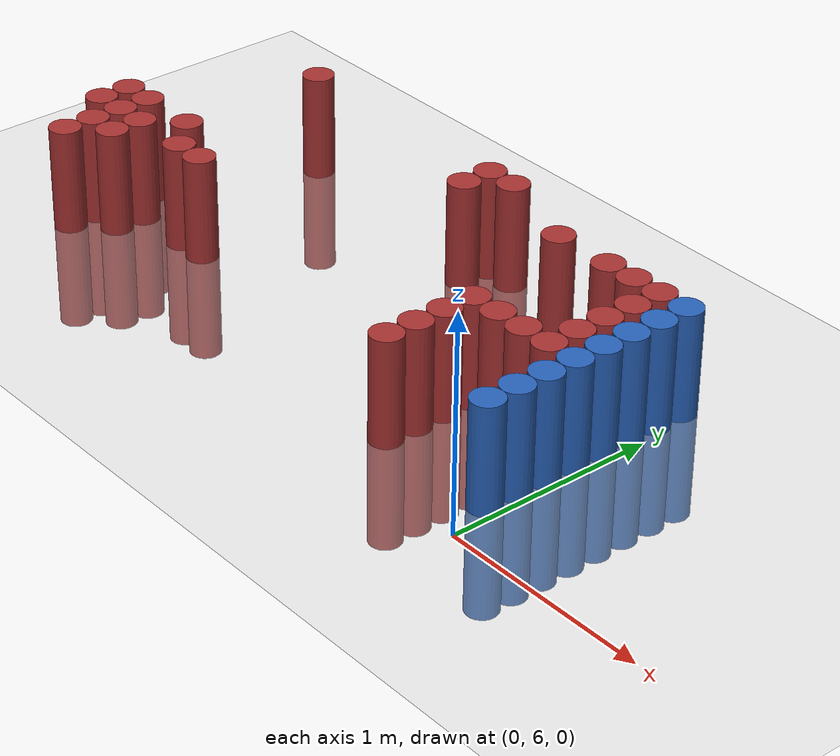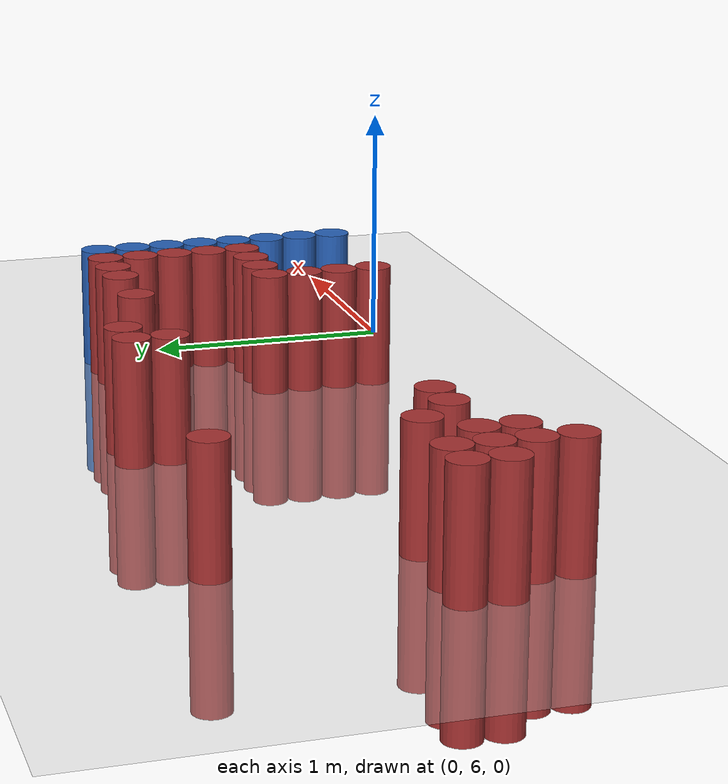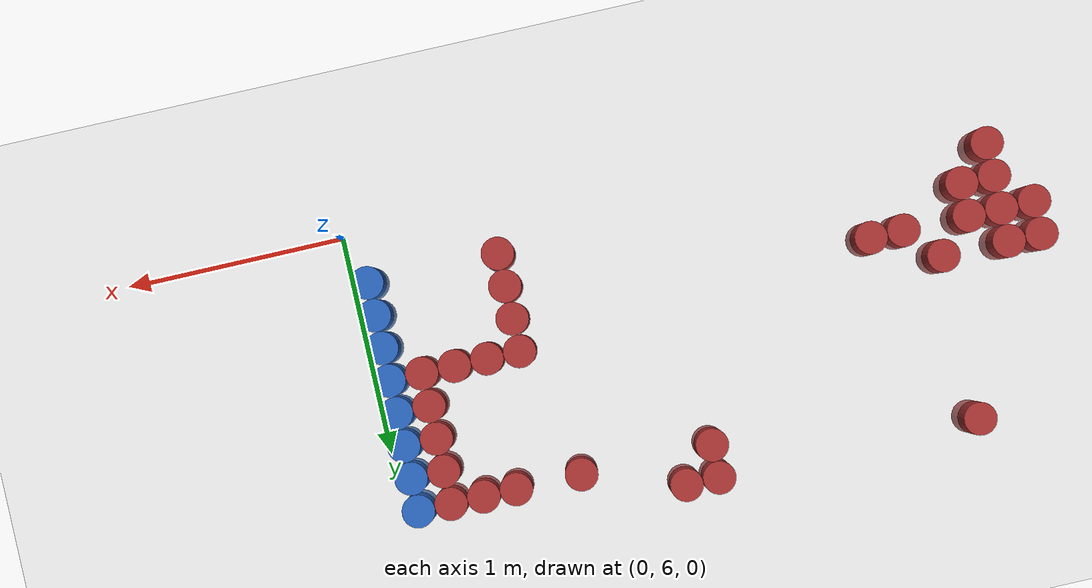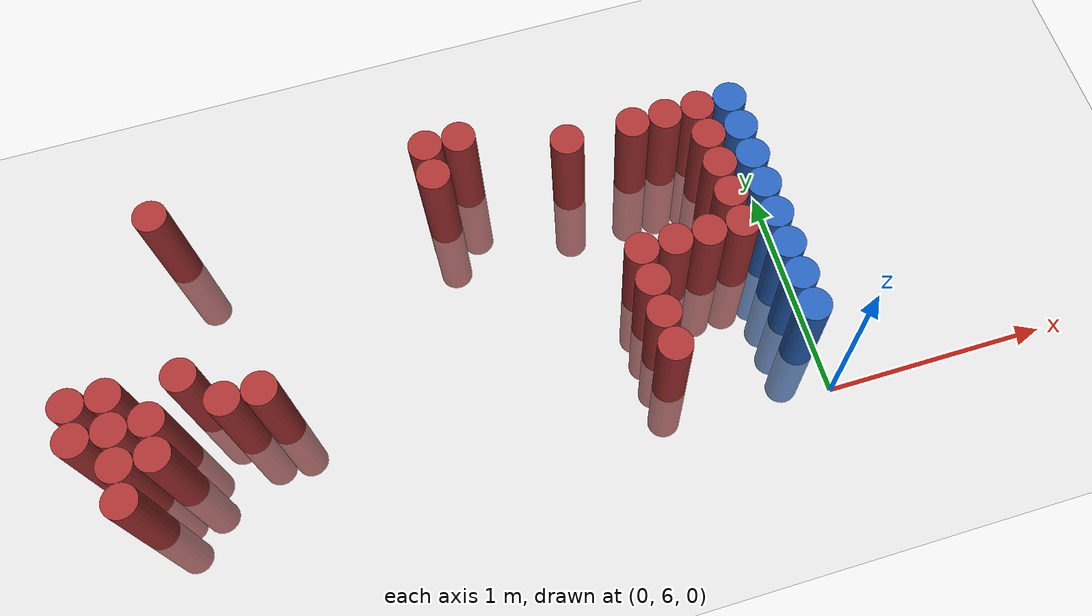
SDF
<sdf version="1.6">
 <world name="default">
  <model name="ground_plane">
   <static>1</static>
   <link name="link">
    <collision name="collision">
     <geometry><plane><normal>0 0 1</normal><size>100 100</size></plane></geometry>
     <surface><friction><ode><mu>100</mu><mu2>50</mu2></ode></friction></surface>
    </collision>
    <visual name="visual">
     <cast_shadows>0</cast_shadows>
     <geometry><plane><normal>0 0 1</normal><size>100 100</size></plane></geometry>
     <material>
      <script><uri>file://media/materials/scripts/gazebo.material</uri><name>Gazebo/Grey</name></script>
     </material>
    </visual>
   </link>
  </model>
  <model name="unit_cylinder_196">
   <static>1</static>
   <pose>-3.075000 6.525000 0.000000 0.000000 0.000000 0.000000</pose>
   <link name="link">
    <inertial>
     <mass>1</mass>
     <inertia><ixx>0.145833</ixx><ixy>0</ixy><ixz>0</ixz><iyy>0.145833</iyy><iyz>0</iyz><izz>0.125</izz></inertia>
    </inertial>
    <collision name="collision">
     <geometry><cylinder><radius>0.075000</radius><length>1</length></cylinder></geometry>
    </collision>
    <visual name="visual">
     <geometry><cylinder><radius>0.075000</radius><length>1</length></cylinder></geometry>
     <material>
      <ambient>0.648000 0.192000 0.192000 1</ambient>
      <diffuse>0.648000 0.192000 0.192000 1</diffuse>
     </material>
     <material>
      <script><name>Gazebo/Grey</name><uri>file://media/materials/scripts/gazebo.material</uri></script>
     </material>
    </visual>
    <sensor name="sensor_contact" type="contact"><contact><collision>collision</collision></contact></sensor>
   </link>
   <plugin filename="gz-sim-touchplugin-system" name="gz::sim::systems::TouchPlugin">
    <target>robot</target>
    <namespace>robot</namespace>
    <time>0.001</time>
    <enabled>true</enabled>
   </plugin>
  </model>
  <model name="unit_cylinder_197">
   <static>1</static>
   <pose>-3.075000 6.675000 0.000000 0.000000 0.000000 0.000000</pose>
   <link name="link">
    <inertial>
     <mass>1</mass>
     <inertia><ixx>0.145833</ixx><ixy>0</ixy><ixz>0</ixz><iyy>0.145833</iyy><iyz>0</iyz><izz>0.125</izz></inertia>
    </inertial>
    <collision name="collision">
     <geometry><cylinder><radius>0.075000</radius><length>1</length></cylinder></geometry>
    </collision>
    <visual name="visual">
     <geometry><cylinder><radius>0.075000</radius><length>1</length></cylinder></geometry>
     <material>
      <ambient>0.648000 0.192000 0.192000 1</ambient>
      <diffuse>0.648000 0.192000 0.192000 1</diffuse>
     </material>
     <material>
      <script><name>Gazebo/Grey</name><uri>file://media/materials/scripts/gazebo.material</uri></script>
     </material>
    </visual>
    <sensor name="sensor_contact" type="contact"><contact><collision>collision</collision></contact></sensor>
   </link>
   <plugin filename="gz-sim-touchplugin-system" name="gz::sim::systems::TouchPlugin">
    <target>robot</target>
    <namespace>robot</namespace>
    <time>0.001</time>
    <enabled>true</enabled>
   </plugin>
  </model>
  <model name="unit_cylinder_203">
   <static>1</static>
   <pose>-2.925000 6.225000 0.000000 0.000000 0.000000 0.000000</pose>
   <link name="link">
    <inertial>
     <mass>1</mass>
     <inertia><ixx>0.145833</ixx><ixy>0</ixy><ixz>0</ixz><iyy>0.145833</iyy><iyz>0</iyz><izz>0.125</izz></inertia>
    </inertial>
    <collision name="collision">
     <geometry><cylinder><radius>0.075000</radius><length>1</length></cylinder></geometry>
    </collision>
    <visual name="visual">
     <geometry><cylinder><radius>0.075000</radius><length>1</length></cylinder></geometry>
     <material>
      <ambient>0.648000 0.192000 0.192000 1</ambient>
      <diffuse>0.648000 0.192000 0.192000 1</diffuse>
     </material>
     <material>
      <script><name>Gazebo/Grey</name><uri>file://media/materials/scripts/gazebo.material</uri></script>
     </material>
    </visual>
    <sensor name="sensor_contact" type="contact"><contact><collision>collision</collision></contact></sensor>
   </link>
   <plugin filename="gz-sim-touchplugin-system" name="gz::sim::systems::TouchPlugin">
    <target>robot</target>
    <namespace>robot</namespace>
    <time>0.001</time>
    <enabled>true</enabled>
   </plugin>
  </model>
  <model name="unit_cylinder_204">
   <static>1</static>
   <pose>-2.925000 6.375000 0.000000 0.000000 0.000000 0.000000</pose>
   <link name="link">
    <inertial>
     <mass>1</mass>
     <inertia><ixx>0.145833</ixx><ixy>0</ixy><ixz>0</ixz><iyy>0.145833</iyy><iyz>0</iyz><izz>0.125</izz></inertia>
    </inertial>
    <collision name="collision">
     <geometry><cylinder><radius>0.075000</radius><length>1</length></cylinder></geometry>
    </collision>
    <visual name="visual">
     <geometry><cylinder><radius>0.075000</radius><length>1</length></cylinder></geometry>
     <material>
      <ambient>0.648000 0.192000 0.192000 1</ambient>
      <diffuse>0.648000 0.192000 0.192000 1</diffuse>
     </material>
     <material>
      <script><name>Gazebo/Grey</name><uri>file://media/materials/scripts/gazebo.material</uri></script>
     </material>
    </visual>
    <sensor name="sensor_contact" type="contact"><contact><collision>collision</collision></contact></sensor>
   </link>
   <plugin filename="gz-sim-touchplugin-system" name="gz::sim::systems::TouchPlugin">
    <target>robot</target>
    <namespace>robot</namespace>
    <time>0.001</time>
    <enabled>true</enabled>
   </plugin>
  </model>
  <model name="unit_cylinder_205">
   <static>1</static>
   <pose>-2.925000 6.525000 0.000000 0.000000 0.000000 0.000000</pose>
   <link name="link">
    <inertial>
     <mass>1</mass>
     <inertia><ixx>0.145833</ixx><ixy>0</ixy><ixz>0</ixz><iyy>0.145833</iyy><iyz>0</iyz><izz>0.125</izz></inertia>
    </inertial>
    <collision name="collision">
     <geometry><cylinder><radius>0.075000</radius><length>1</length></cylinder></geometry>
    </collision>
    <visual name="visual">
     <geometry><cylinder><radius>0.075000</radius><length>1</length></cylinder></geometry>
     <material>
      <ambient>0.648000 0.192000 0.192000 1</ambient>
      <diffuse>0.648000 0.192000 0.192000 1</diffuse>
     </material>
     <material>
      <script><name>Gazebo/Grey</name><uri>file://media/materials/scripts/gazebo.material</uri></script>
     </material>
    </visual>
    <sensor name="sensor_contact" type="contact"><contact><collision>collision</collision></contact></sensor>
   </link>
   <plugin filename="gz-sim-touchplugin-system" name="gz::sim::systems::TouchPlugin">
    <target>robot</target>
    <namespace>robot</namespace>
    <time>0.001</time>
    <enabled>true</enabled>
   </plugin>
  </model>
  <model name="unit_cylinder_206">
   <static>1</static>
   <pose>-2.925000 6.675000 0.000000 0.000000 0.000000 0.000000</pose>
   <link name="link">
    <inertial>
     <mass>1</mass>
     <inertia><ixx>0.145833</ixx><ixy>0</ixy><ixz>0</ixz><iyy>0.145833</iyy><iyz>0</iyz><izz>0.125</izz></inertia>
    </inertial>
    <collision name="collision">
     <geometry><cylinder><radius>0.075000</radius><length>1</length></cylinder></geometry>
    </collision>
    <visual name="visual">
     <geometry><cylinder><radius>0.075000</radius><length>1</length></cylinder></geometry>
     <material>
      <ambient>0.648000 0.192000 0.192000 1</ambient>
      <diffuse>0.648000 0.192000 0.192000 1</diffuse>
     </material>
     <material>
      <script><name>Gazebo/Grey</name><uri>file://media/materials/scripts/gazebo.material</uri></script>
     </material>
    </visual>
    <sensor name="sensor_contact" type="contact"><contact><collision>collision</collision></contact></sensor>
   </link>
   <plugin filename="gz-sim-touchplugin-system" name="gz::sim::systems::TouchPlugin">
    <target>robot</target>
    <namespace>robot</namespace>
    <time>0.001</time>
    <enabled>true</enabled>
   </plugin>
  </model>
  <model name="unit_cylinder_213">
   <static>1</static>
   <pose>-2.775000 6.375000 0.000000 0.000000 0.000000 0.000000</pose>
   <link name="link">
    <inertial>
     <mass>1</mass>
     <inertia><ixx>0.145833</ixx><ixy>0</ixy><ixz>0</ixz><iyy>0.145833</iyy><iyz>0</iyz><izz>0.125</izz></inertia>
    </inertial>
    <collision name="collision">
     <geometry><cylinder><radius>0.075000</radius><length>1</length></cylinder></geometry>
    </collision>
    <visual name="visual">
     <geometry><cylinder><radius>0.075000</radius><length>1</length></cylinder></geometry>
     <material>
      <ambient>0.648000 0.192000 0.192000 1</ambient>
      <diffuse>0.648000 0.192000 0.192000 1</diffuse>
     </material>
     <material>
      <script><name>Gazebo/Grey</name><uri>file://media/materials/scripts/gazebo.material</uri></script>
     </material>
    </visual>
    <sensor name="sensor_contact" type="contact"><contact><collision>collision</collision></contact></sensor>
   </link>
   <plugin filename="gz-sim-touchplugin-system" name="gz::sim::systems::TouchPlugin">
    <target>robot</target>
    <namespace>robot</namespace>
    <time>0.001</time>
    <enabled>true</enabled>
   </plugin>
  </model>
  <model name="unit_cylinder_214">
   <static>1</static>
   <pose>-2.775000 6.525000 0.000000 0.000000 0.000000 0.000000</pose>
   <link name="link">
    <inertial>
     <mass>1</mass>
     <inertia><ixx>0.145833</ixx><ixy>0</ixy><ixz>0</ixz><iyy>0.145833</iyy><iyz>0</iyz><izz>0.125</izz></inertia>
    </inertial>
    <collision name="collision">
     <geometry><cylinder><radius>0.075000</radius><length>1</length></cylinder></geometry>
    </collision>
    <visual name="visual">
     <geometry><cylinder><radius>0.075000</radius><length>1</length></cylinder></geometry>
     <material>
      <ambient>0.648000 0.192000 0.192000 1</ambient>
      <diffuse>0.648000 0.192000 0.192000 1</diffuse>
     </material>
     <material>
      <script><name>Gazebo/Grey</name><uri>file://media/materials/scripts/gazebo.material</uri></script>
     </material>
    </visual>
    <sensor name="sensor_contact" type="contact"><contact><collision>collision</collision></contact></sensor>
   </link>
   <plugin filename="gz-sim-touchplugin-system" name="gz::sim::systems::TouchPlugin">
    <target>robot</target>
    <namespace>robot</namespace>
    <time>0.001</time>
    <enabled>true</enabled>
   </plugin>
  </model>
  <model name="unit_cylinder_219">
   <static>1</static>
   <pose>-2.625000 6.675000 0.000000 0.000000 0.000000 0.000000</pose>
   <link name="link">
    <inertial>
     <mass>1</mass>
     <inertia><ixx>0.145833</ixx><ixy>0</ixy><ixz>0</ixz><iyy>0.145833</iyy><iyz>0</iyz><izz>0.125</izz></inertia>
    </inertial>
    <collision name="collision">
     <geometry><cylinder><radius>0.075000</radius><length>1</length></cylinder></geometry>
    </collision>
    <visual name="visual">
     <geometry><cylinder><radius>0.075000</radius><length>1</length></cylinder></geometry>
     <material>
      <ambient>0.648000 0.192000 0.192000 1</ambient>
      <diffuse>0.648000 0.192000 0.192000 1</diffuse>
     </material>
     <material>
      <script><name>Gazebo/Grey</name><uri>file://media/materials/scripts/gazebo.material</uri></script>
     </material>
    </visual>
    <sensor name="sensor_contact" type="contact"><contact><collision>collision</collision></contact></sensor>
   </link>
   <plugin filename="gz-sim-touchplugin-system" name="gz::sim::systems::TouchPlugin">
    <target>robot</target>
    <namespace>robot</namespace>
    <time>0.001</time>
    <enabled>true</enabled>
   </plugin>
  </model>
  <model name="unit_cylinder_220">
   <static>1</static>
   <pose>-2.625000 7.425000 0.000000 0.000000 0.000000 0.000000</pose>
   <link name="link">
    <inertial>
     <mass>1</mass>
     <inertia><ixx>0.145833</ixx><ixy>0</ixy><ixz>0</ixz><iyy>0.145833</iyy><iyz>0</iyz><izz>0.125</izz></inertia>
    </inertial>
    <collision name="collision">
     <geometry><cylinder><radius>0.075000</radius><length>1</length></cylinder></geometry>
    </collision>
    <visual name="visual">
     <geometry><cylinder><radius>0.075000</radius><length>1</length></cylinder></geometry>
     <material>
      <ambient>0.648000 0.192000 0.192000 1</ambient>
      <diffuse>0.648000 0.192000 0.192000 1</diffuse>
     </material>
     <material>
      <script><name>Gazebo/Grey</name><uri>file://media/materials/scripts/gazebo.material</uri></script>
     </material>
    </visual>
    <sensor name="sensor_contact" type="contact"><contact><collision>collision</collision></contact></sensor>
   </link>
   <plugin filename="gz-sim-touchplugin-system" name="gz::sim::systems::TouchPlugin">
    <target>robot</target>
    <namespace>robot</namespace>
    <time>0.001</time>
    <enabled>true</enabled>
   </plugin>
  </model>
  <model name="unit_cylinder_227">
   <static>1</static>
   <pose>-2.475000 6.525000 0.000000 0.000000 0.000000 0.000000</pose>
   <link name="link">
    <inertial>
     <mass>1</mass>
     <inertia><ixx>0.145833</ixx><ixy>0</ixy><ixz>0</ixz><iyy>0.145833</iyy><iyz>0</iyz><izz>0.125</izz></inertia>
    </inertial>
    <collision name="collision">
     <geometry><cylinder><radius>0.075000</radius><length>1</length></cylinder></geometry>
    </collision>
    <visual name="visual">
     <geometry><cylinder><radius>0.075000</radius><length>1</length></cylinder></geometry>
     <material>
      <ambient>0.648000 0.192000 0.192000 1</ambient>
      <diffuse>0.648000 0.192000 0.192000 1</diffuse>
     </material>
     <material>
      <script><name>Gazebo/Grey</name><uri>file://media/materials/scripts/gazebo.material</uri></script>
     </material>
    </visual>
    <sensor name="sensor_contact" type="contact"><contact><collision>collision</collision></contact></sensor>
   </link>
   <plugin filename="gz-sim-touchplugin-system" name="gz::sim::systems::TouchPlugin">
    <target>robot</target>
    <namespace>robot</namespace>
    <time>0.001</time>
    <enabled>true</enabled>
   </plugin>
  </model>
  <model name="unit_cylinder_233">
   <static>1</static>
   <pose>-2.325000 6.525000 0.000000 0.000000 0.000000 0.000000</pose>
   <link name="link">
    <inertial>
     <mass>1</mass>
     <inertia><ixx>0.145833</ixx><ixy>0</ixy><ixz>0</ixz><iyy>0.145833</iyy><iyz>0</iyz><izz>0.125</izz></inertia>
    </inertial>
    <collision name="collision">
     <geometry><cylinder><radius>0.075000</radius><length>1</length></cylinder></geometry>
    </collision>
    <visual name="visual">
     <geometry><cylinder><radius>0.075000</radius><length>1</length></cylinder></geometry>
     <material>
      <ambient>0.648000 0.192000 0.192000 1</ambient>
      <diffuse>0.648000 0.192000 0.192000 1</diffuse>
     </material>
     <material>
      <script><name>Gazebo/Grey</name><uri>file://media/materials/scripts/gazebo.material</uri></script>
     </material>
    </visual>
    <sensor name="sensor_contact" type="contact"><contact><collision>collision</collision></contact></sensor>
   </link>
   <plugin filename="gz-sim-touchplugin-system" name="gz::sim::systems::TouchPlugin">
    <target>robot</target>
    <namespace>robot</namespace>
    <time>0.001</time>
    <enabled>true</enabled>
   </plugin>
  </model>
  <model name="unit_cylinder_253">
   <static>1</static>
   <pose>-1.425000 7.275000 0.000000 0.000000 0.000000 0.000000</pose>
   <link name="link">
    <inertial>
     <mass>1</mass>
     <inertia><ixx>0.145833</ixx><ixy>0</ixy><ixz>0</ixz><iyy>0.145833</iyy><iyz>0</iyz><izz>0.125</izz></inertia>
    </inertial>
    <collision name="collision">
     <geometry><cylinder><radius>0.075000</radius><length>1</length></cylinder></geometry>
    </collision>
    <visual name="visual">
     <geometry><cylinder><radius>0.075000</radius><length>1</length></cylinder></geometry>
     <material>
      <ambient>0.648000 0.192000 0.192000 1</ambient>
      <diffuse>0.648000 0.192000 0.192000 1</diffuse>
     </material>
     <material>
      <script><name>Gazebo/Grey</name><uri>file://media/materials/scripts/gazebo.material</uri></script>
     </material>
    </visual>
    <sensor name="sensor_contact" type="contact"><contact><collision>collision</collision></contact></sensor>
   </link>
   <plugin filename="gz-sim-touchplugin-system" name="gz::sim::systems::TouchPlugin">
    <target>robot</target>
    <namespace>robot</namespace>
    <time>0.001</time>
    <enabled>true</enabled>
   </plugin>
  </model>
  <model name="unit_cylinder_254">
   <static>1</static>
   <pose>-1.425000 7.425000 0.000000 0.000000 0.000000 0.000000</pose>
   <link name="link">
    <inertial>
     <mass>1</mass>
     <inertia><ixx>0.145833</ixx><ixy>0</ixy><ixz>0</ixz><iyy>0.145833</iyy><iyz>0</iyz><izz>0.125</izz></inertia>
    </inertial>
    <collision name="collision">
     <geometry><cylinder><radius>0.075000</radius><length>1</length></cylinder></geometry>
    </collision>
    <visual name="visual">
     <geometry><cylinder><radius>0.075000</radius><length>1</length></cylinder></geometry>
     <material>
      <ambient>0.648000 0.192000 0.192000 1</ambient>
      <diffuse>0.648000 0.192000 0.192000 1</diffuse>
     </material>
     <material>
      <script><name>Gazebo/Grey</name><uri>file://media/materials/scripts/gazebo.material</uri></script>
     </material>
    </visual>
    <sensor name="sensor_contact" type="contact"><contact><collision>collision</collision></contact></sensor>
   </link>
   <plugin filename="gz-sim-touchplugin-system" name="gz::sim::systems::TouchPlugin">
    <target>robot</target>
    <namespace>robot</namespace>
    <time>0.001</time>
    <enabled>true</enabled>
   </plugin>
  </model>
  <model name="unit_cylinder_255">
   <static>1</static>
   <pose>-1.275000 7.425000 0.000000 0.000000 0.000000 0.000000</pose>
   <link name="link">
    <inertial>
     <mass>1</mass>
     <inertia><ixx>0.145833</ixx><ixy>0</ixy><ixz>0</ixz><iyy>0.145833</iyy><iyz>0</iyz><izz>0.125</izz></inertia>
    </inertial>
    <collision name="collision">
     <geometry><cylinder><radius>0.075000</radius><length>1</length></cylinder></geometry>
    </collision>
    <visual name="visual">
     <geometry><cylinder><radius>0.075000</radius><length>1</length></cylinder></geometry>
     <material>
      <ambient>0.648000 0.192000 0.192000 1</ambient>
      <diffuse>0.648000 0.192000 0.192000 1</diffuse>
     </material>
     <material>
      <script><name>Gazebo/Grey</name><uri>file://media/materials/scripts/gazebo.material</uri></script>
     </material>
    </visual>
    <sensor name="sensor_contact" type="contact"><contact><collision>collision</collision></contact></sensor>
   </link>
   <plugin filename="gz-sim-touchplugin-system" name="gz::sim::systems::TouchPlugin">
    <target>robot</target>
    <namespace>robot</namespace>
    <time>0.001</time>
    <enabled>true</enabled>
   </plugin>
  </model>
  <model name="unit_cylinder_260">
   <static>1</static>
   <pose>-0.825000 7.275000 0.000000 0.000000 0.000000 0.000000</pose>
   <link name="link">
    <inertial>
     <mass>1</mass>
     <inertia><ixx>0.145833</ixx><ixy>0</ixy><ixz>0</ixz><iyy>0.145833</iyy><iyz>0</iyz><izz>0.125</izz></inertia>
    </inertial>
    <collision name="collision">
     <geometry><cylinder><radius>0.075000</radius><length>1</length></cylinder></geometry>
    </collision>
    <visual name="visual">
     <geometry><cylinder><radius>0.075000</radius><length>1</length></cylinder></geometry>
     <material>
      <ambient>0.648000 0.192000 0.192000 1</ambient>
      <diffuse>0.648000 0.192000 0.192000 1</diffuse>
     </material>
     <material>
      <script><name>Gazebo/Grey</name><uri>file://media/materials/scripts/gazebo.material</uri></script>
     </material>
    </visual>
    <sensor name="sensor_contact" type="contact"><contact><collision>collision</collision></contact></sensor>
   </link>
   <plugin filename="gz-sim-touchplugin-system" name="gz::sim::systems::TouchPlugin">
    <target>robot</target>
    <namespace>robot</namespace>
    <time>0.001</time>
    <enabled>true</enabled>
   </plugin>
  </model>
  <model name="unit_cylinder_265">
   <static>1</static>
   <pose>-0.675000 6.225000 0.000000 0.000000 0.000000 0.000000</pose>
   <link name="link">
    <inertial>
     <mass>1</mass>
     <inertia><ixx>0.145833</ixx><ixy>0</ixy><ixz>0</ixz><iyy>0.145833</iyy><iyz>0</iyz><izz>0.125</izz></inertia>
    </inertial>
    <collision name="collision">
     <geometry><cylinder><radius>0.075000</radius><length>1</length></cylinder></geometry>
    </collision>
    <visual name="visual">
     <geometry><cylinder><radius>0.075000</radius><length>1</length></cylinder></geometry>
     <material>
      <ambient>0.648000 0.192000 0.192000 1</ambient>
      <diffuse>0.648000 0.192000 0.192000 1</diffuse>
     </material>
     <material>
      <script><name>Gazebo/Grey</name><uri>file://media/materials/scripts/gazebo.material</uri></script>
     </material>
    </visual>
    <sensor name="sensor_contact" type="contact"><contact><collision>collision</collision></contact></sensor>
   </link>
   <plugin filename="gz-sim-touchplugin-system" name="gz::sim::systems::TouchPlugin">
    <target>robot</target>
    <namespace>robot</namespace>
    <time>0.001</time>
    <enabled>true</enabled>
   </plugin>
  </model>
  <model name="unit_cylinder_266">
   <static>1</static>
   <pose>-0.675000 6.375000 0.000000 0.000000 0.000000 0.000000</pose>
   <link name="link">
    <inertial>
     <mass>1</mass>
     <inertia><ixx>0.145833</ixx><ixy>0</ixy><ixz>0</ixz><iyy>0.145833</iyy><iyz>0</iyz><izz>0.125</izz></inertia>
    </inertial>
    <collision name="collision">
     <geometry><cylinder><radius>0.075000</radius><length>1</length></cylinder></geometry>
    </collision>
    <visual name="visual">
     <geometry><cylinder><radius>0.075000</radius><length>1</length></cylinder></geometry>
     <material>
      <ambient>0.648000 0.192000 0.192000 1</ambient>
      <diffuse>0.648000 0.192000 0.192000 1</diffuse>
     </material>
     <material>
      <script><name>Gazebo/Grey</name><uri>file://media/materials/scripts/gazebo.material</uri></script>
     </material>
    </visual>
    <sensor name="sensor_contact" type="contact"><contact><collision>collision</collision></contact></sensor>
   </link>
   <plugin filename="gz-sim-touchplugin-system" name="gz::sim::systems::TouchPlugin">
    <target>robot</target>
    <namespace>robot</namespace>
    <time>0.001</time>
    <enabled>true</enabled>
   </plugin>
  </model>
  <model name="unit_cylinder_267">
   <static>1</static>
   <pose>-0.675000 6.525000 0.000000 0.000000 0.000000 0.000000</pose>
   <link name="link">
    <inertial>
     <mass>1</mass>
     <inertia><ixx>0.145833</ixx><ixy>0</ixy><ixz>0</ixz><iyy>0.145833</iyy><iyz>0</iyz><izz>0.125</izz></inertia>
    </inertial>
    <collision name="collision">
     <geometry><cylinder><radius>0.075000</radius><length>1</length></cylinder></geometry>
    </collision>
    <visual name="visual">
     <geometry><cylinder><radius>0.075000</radius><length>1</length></cylinder></geometry>
     <material>
      <ambient>0.648000 0.192000 0.192000 1</ambient>
      <diffuse>0.648000 0.192000 0.192000 1</diffuse>
     </material>
     <material>
      <script><name>Gazebo/Grey</name><uri>file://media/materials/scripts/gazebo.material</uri></script>
     </material>
    </visual>
    <sensor name="sensor_contact" type="contact"><contact><collision>collision</collision></contact></sensor>
   </link>
   <plugin filename="gz-sim-touchplugin-system" name="gz::sim::systems::TouchPlugin">
    <target>robot</target>
    <namespace>robot</namespace>
    <time>0.001</time>
    <enabled>true</enabled>
   </plugin>
  </model>
  <model name="unit_cylinder_268">
   <static>1</static>
   <pose>-0.675000 6.675000 0.000000 0.000000 0.000000 0.000000</pose>
   <link name="link">
    <inertial>
     <mass>1</mass>
     <inertia><ixx>0.145833</ixx><ixy>0</ixy><ixz>0</ixz><iyy>0.145833</iyy><iyz>0</iyz><izz>0.125</izz></inertia>
    </inertial>
    <collision name="collision">
     <geometry><cylinder><radius>0.075000</radius><length>1</length></cylinder></geometry>
    </collision>
    <visual name="visual">
     <geometry><cylinder><radius>0.075000</radius><length>1</length></cylinder></geometry>
     <material>
      <ambient>0.648000 0.192000 0.192000 1</ambient>
      <diffuse>0.648000 0.192000 0.192000 1</diffuse>
     </material>
     <material>
      <script><name>Gazebo/Grey</name><uri>file://media/materials/scripts/gazebo.material</uri></script>
     </material>
    </visual>
    <sensor name="sensor_contact" type="contact"><contact><collision>collision</collision></contact></sensor>
   </link>
   <plugin filename="gz-sim-touchplugin-system" name="gz::sim::systems::TouchPlugin">
    <target>robot</target>
    <namespace>robot</namespace>
    <time>0.001</time>
    <enabled>true</enabled>
   </plugin>
  </model>
  <model name="unit_cylinder_277">
   <static>1</static>
   <pose>-0.525000 6.675000 0.000000 0.000000 0.000000 0.000000</pose>
   <link name="link">
    <inertial>
     <mass>1</mass>
     <inertia><ixx>0.145833</ixx><ixy>0</ixy><ixz>0</ixz><iyy>0.145833</iyy><iyz>0</iyz><izz>0.125</izz></inertia>
    </inertial>
    <collision name="collision">
     <geometry><cylinder><radius>0.075000</radius><length>1</length></cylinder></geometry>
    </collision>
    <visual name="visual">
     <geometry><cylinder><radius>0.075000</radius><length>1</length></cylinder></geometry>
     <material>
      <ambient>0.648000 0.192000 0.192000 1</ambient>
      <diffuse>0.648000 0.192000 0.192000 1</diffuse>
     </material>
     <material>
      <script><name>Gazebo/Grey</name><uri>file://media/materials/scripts/gazebo.material</uri></script>
     </material>
    </visual>
    <sensor name="sensor_contact" type="contact"><contact><collision>collision</collision></contact></sensor>
   </link>
   <plugin filename="gz-sim-touchplugin-system" name="gz::sim::systems::TouchPlugin">
    <target>robot</target>
    <namespace>robot</namespace>
    <time>0.001</time>
    <enabled>true</enabled>
   </plugin>
  </model>
  <model name="unit_cylinder_278">
   <static>1</static>
   <pose>-0.525000 7.275000 0.000000 0.000000 0.000000 0.000000</pose>
   <link name="link">
    <inertial>
     <mass>1</mass>
     <inertia><ixx>0.145833</ixx><ixy>0</ixy><ixz>0</ixz><iyy>0.145833</iyy><iyz>0</iyz><izz>0.125</izz></inertia>
    </inertial>
    <collision name="collision">
     <geometry><cylinder><radius>0.075000</radius><length>1</length></cylinder></geometry>
    </collision>
    <visual name="visual">
     <geometry><cylinder><radius>0.075000</radius><length>1</length></cylinder></geometry>
     <material>
      <ambient>0.648000 0.192000 0.192000 1</ambient>
      <diffuse>0.648000 0.192000 0.192000 1</diffuse>
     </material>
     <material>
      <script><name>Gazebo/Grey</name><uri>file://media/materials/scripts/gazebo.material</uri></script>
     </material>
    </visual>
    <sensor name="sensor_contact" type="contact"><contact><collision>collision</collision></contact></sensor>
   </link>
   <plugin filename="gz-sim-touchplugin-system" name="gz::sim::systems::TouchPlugin">
    <target>robot</target>
    <namespace>robot</namespace>
    <time>0.001</time>
    <enabled>true</enabled>
   </plugin>
  </model>
  <model name="unit_cylinder_284">
   <static>1</static>
   <pose>-0.375000 6.675000 0.000000 0.000000 0.000000 0.000000</pose>
   <link name="link">
    <inertial>
     <mass>1</mass>
     <inertia><ixx>0.145833</ixx><ixy>0</ixy><ixz>0</ixz><iyy>0.145833</iyy><iyz>0</iyz><izz>0.125</izz></inertia>
    </inertial>
    <collision name="collision">
     <geometry><cylinder><radius>0.075000</radius><length>1</length></cylinder></geometry>
    </collision>
    <visual name="visual">
     <geometry><cylinder><radius>0.075000</radius><length>1</length></cylinder></geometry>
     <material>
      <ambient>0.648000 0.192000 0.192000 1</ambient>
      <diffuse>0.648000 0.192000 0.192000 1</diffuse>
     </material>
     <material>
      <script><name>Gazebo/Grey</name><uri>file://media/materials/scripts/gazebo.material</uri></script>
     </material>
    </visual>
    <sensor name="sensor_contact" type="contact"><contact><collision>collision</collision></contact></sensor>
   </link>
   <plugin filename="gz-sim-touchplugin-system" name="gz::sim::systems::TouchPlugin">
    <target>robot</target>
    <namespace>robot</namespace>
    <time>0.001</time>
    <enabled>true</enabled>
   </plugin>
  </model>
  <model name="unit_cylinder_285">
   <static>1</static>
   <pose>-0.375000 7.275000 0.000000 0.000000 0.000000 0.000000</pose>
   <link name="link">
    <inertial>
     <mass>1</mass>
     <inertia><ixx>0.145833</ixx><ixy>0</ixy><ixz>0</ixz><iyy>0.145833</iyy><iyz>0</iyz><izz>0.125</izz></inertia>
    </inertial>
    <collision name="collision">
     <geometry><cylinder><radius>0.075000</radius><length>1</length></cylinder></geometry>
    </collision>
    <visual name="visual">
     <geometry><cylinder><radius>0.075000</radius><length>1</length></cylinder></geometry>
     <material>
      <ambient>0.648000 0.192000 0.192000 1</ambient>
      <diffuse>0.648000 0.192000 0.192000 1</diffuse>
     </material>
     <material>
      <script><name>Gazebo/Grey</name><uri>file://media/materials/scripts/gazebo.material</uri></script>
     </material>
    </visual>
    <sensor name="sensor_contact" type="contact"><contact><collision>collision</collision></contact></sensor>
   </link>
   <plugin filename="gz-sim-touchplugin-system" name="gz::sim::systems::TouchPlugin">
    <target>robot</target>
    <namespace>robot</namespace>
    <time>0.001</time>
    <enabled>true</enabled>
   </plugin>
  </model>
  <model name="unit_cylinder_290">
   <static>1</static>
   <pose>-0.225000 6.675000 0.000000 0.000000 0.000000 0.000000</pose>
   <link name="link">
    <inertial>
     <mass>1</mass>
     <inertia><ixx>0.145833</ixx><ixy>0</ixy><ixz>0</ixz><iyy>0.145833</iyy><iyz>0</iyz><izz>0.125</izz></inertia>
    </inertial>
    <collision name="collision">
     <geometry><cylinder><radius>0.075000</radius><length>1</length></cylinder></geometry>
    </collision>
    <visual name="visual">
     <geometry><cylinder><radius>0.075000</radius><length>1</length></cylinder></geometry>
     <material>
      <ambient>0.648000 0.192000 0.192000 1</ambient>
      <diffuse>0.648000 0.192000 0.192000 1</diffuse>
     </material>
     <material>
      <script><name>Gazebo/Grey</name><uri>file://media/materials/scripts/gazebo.material</uri></script>
     </material>
    </visual>
    <sensor name="sensor_contact" type="contact"><contact><collision>collision</collision></contact></sensor>
   </link>
   <plugin filename="gz-sim-touchplugin-system" name="gz::sim::systems::TouchPlugin">
    <target>robot</target>
    <namespace>robot</namespace>
    <time>0.001</time>
    <enabled>true</enabled>
   </plugin>
  </model>
  <model name="unit_cylinder_291">
   <static>1</static>
   <pose>-0.225000 6.825000 0.000000 0.000000 0.000000 0.000000</pose>
   <link name="link">
    <inertial>
     <mass>1</mass>
     <inertia><ixx>0.145833</ixx><ixy>0</ixy><ixz>0</ixz><iyy>0.145833</iyy><iyz>0</iyz><izz>0.125</izz></inertia>
    </inertial>
    <collision name="collision">
     <geometry><cylinder><radius>0.075000</radius><length>1</length></cylinder></geometry>
    </collision>
    <visual name="visual">
     <geometry><cylinder><radius>0.075000</radius><length>1</length></cylinder></geometry>
     <material>
      <ambient>0.648000 0.192000 0.192000 1</ambient>
      <diffuse>0.648000 0.192000 0.192000 1</diffuse>
     </material>
     <material>
      <script><name>Gazebo/Grey</name><uri>file://media/materials/scripts/gazebo.material</uri></script>
     </material>
    </visual>
    <sensor name="sensor_contact" type="contact"><contact><collision>collision</collision></contact></sensor>
   </link>
   <plugin filename="gz-sim-touchplugin-system" name="gz::sim::systems::TouchPlugin">
    <target>robot</target>
    <namespace>robot</namespace>
    <time>0.001</time>
    <enabled>true</enabled>
   </plugin>
  </model>
  <model name="unit_cylinder_292">
   <static>1</static>
   <pose>-0.225000 6.975000 0.000000 0.000000 0.000000 0.000000</pose>
   <link name="link">
    <inertial>
     <mass>1</mass>
     <inertia><ixx>0.145833</ixx><ixy>0</ixy><ixz>0</ixz><iyy>0.145833</iyy><iyz>0</iyz><izz>0.125</izz></inertia>
    </inertial>
    <collision name="collision">
     <geometry><cylinder><radius>0.075000</radius><length>1</length></cylinder></geometry>
    </collision>
    <visual name="visual">
     <geometry><cylinder><radius>0.075000</radius><length>1</length></cylinder></geometry>
     <material>
      <ambient>0.648000 0.192000 0.192000 1</ambient>
      <diffuse>0.648000 0.192000 0.192000 1</diffuse>
     </material>
     <material>
      <script><name>Gazebo/Grey</name><uri>file://media/materials/scripts/gazebo.material</uri></script>
     </material>
    </visual>
    <sensor name="sensor_contact" type="contact"><contact><collision>collision</collision></contact></sensor>
   </link>
   <plugin filename="gz-sim-touchplugin-system" name="gz::sim::systems::TouchPlugin">
    <target>robot</target>
    <namespace>robot</namespace>
    <time>0.001</time>
    <enabled>true</enabled>
   </plugin>
  </model>
  <model name="unit_cylinder_293">
   <static>1</static>
   <pose>-0.225000 7.125000 0.000000 0.000000 0.000000 0.000000</pose>
   <link name="link">
    <inertial>
     <mass>1</mass>
     <inertia><ixx>0.145833</ixx><ixy>0</ixy><ixz>0</ixz><iyy>0.145833</iyy><iyz>0</iyz><izz>0.125</izz></inertia>
    </inertial>
    <collision name="collision">
     <geometry><cylinder><radius>0.075000</radius><length>1</length></cylinder></geometry>
    </collision>
    <visual name="visual">
     <geometry><cylinder><radius>0.075000</radius><length>1</length></cylinder></geometry>
     <material>
      <ambient>0.648000 0.192000 0.192000 1</ambient>
      <diffuse>0.648000 0.192000 0.192000 1</diffuse>
     </material>
     <material>
      <script><name>Gazebo/Grey</name><uri>file://media/materials/scripts/gazebo.material</uri></script>
     </material>
    </visual>
    <sensor name="sensor_contact" type="contact"><contact><collision>collision</collision></contact></sensor>
   </link>
   <plugin filename="gz-sim-touchplugin-system" name="gz::sim::systems::TouchPlugin">
    <target>robot</target>
    <namespace>robot</namespace>
    <time>0.001</time>
    <enabled>true</enabled>
   </plugin>
  </model>
  <model name="unit_cylinder_294">
   <static>1</static>
   <pose>-0.225000 7.275000 0.000000 0.000000 0.000000 0.000000</pose>
   <link name="link">
    <inertial>
     <mass>1</mass>
     <inertia><ixx>0.145833</ixx><ixy>0</ixy><ixz>0</ixz><iyy>0.145833</iyy><iyz>0</iyz><izz>0.125</izz></inertia>
    </inertial>
    <collision name="collision">
     <geometry><cylinder><radius>0.075000</radius><length>1</length></cylinder></geometry>
    </collision>
    <visual name="visual">
     <geometry><cylinder><radius>0.075000</radius><length>1</length></cylinder></geometry>
     <material>
      <ambient>0.648000 0.192000 0.192000 1</ambient>
      <diffuse>0.648000 0.192000 0.192000 1</diffuse>
     </material>
     <material>
      <script><name>Gazebo/Grey</name><uri>file://media/materials/scripts/gazebo.material</uri></script>
     </material>
    </visual>
    <sensor name="sensor_contact" type="contact"><contact><collision>collision</collision></contact></sensor>
   </link>
   <plugin filename="gz-sim-touchplugin-system" name="gz::sim::systems::TouchPlugin">
    <target>robot</target>
    <namespace>robot</namespace>
    <time>0.001</time>
    <enabled>true</enabled>
   </plugin>
  </model>
  <model name="unit_cylinder_311">
   <static>1</static>
   <pose>-0.075000 6.225000 0.000000 0.000000 0.000000 0.000000</pose>
   <link name="link">
    <inertial>
     <mass>1</mass>
     <inertia><ixx>0.145833</ixx><ixy>0</ixy><ixz>0</ixz><iyy>0.145833</iyy><iyz>0</iyz><izz>0.125</izz></inertia>
    </inertial>
    <collision name="collision">
     <geometry><cylinder><radius>0.075000</radius><length>1</length></cylinder></geometry>
    </collision>
    <visual name="visual">
     <geometry><cylinder><radius>0.075000</radius><length>1</length></cylinder></geometry>
     <material>
      <ambient>0.152000 0.379000 0.720000 1</ambient>
      <diffuse>0.152000 0.379000 0.720000 1</diffuse>
     </material>
     <material>
      <script><name>Gazebo/Grey</name><uri>file://media/materials/scripts/gazebo.material</uri></script>
     </material>
    </visual>
    <sensor name="sensor_contact" type="contact"><contact><collision>collision</collision></contact></sensor>
   </link>
   <plugin filename="gz-sim-touchplugin-system" name="gz::sim::systems::TouchPlugin">
    <target>robot</target>
    <namespace>robot</namespace>
    <time>0.001</time>
    <enabled>true</enabled>
   </plugin>
  </model>
  <model name="unit_cylinder_312">
   <static>1</static>
   <pose>-0.075000 6.375000 0.000000 0.000000 0.000000 0.000000</pose>
   <link name="link">
    <inertial>
     <mass>1</mass>
     <inertia><ixx>0.145833</ixx><ixy>0</ixy><ixz>0</ixz><iyy>0.145833</iyy><iyz>0</iyz><izz>0.125</izz></inertia>
    </inertial>
    <collision name="collision">
     <geometry><cylinder><radius>0.075000</radius><length>1</length></cylinder></geometry>
    </collision>
    <visual name="visual">
     <geometry><cylinder><radius>0.075000</radius><length>1</length></cylinder></geometry>
     <material>
      <ambient>0.152000 0.379000 0.720000 1</ambient>
      <diffuse>0.152000 0.379000 0.720000 1</diffuse>
     </material>
     <material>
      <script><name>Gazebo/Grey</name><uri>file://media/materials/scripts/gazebo.material</uri></script>
     </material>
    </visual>
    <sensor name="sensor_contact" type="contact"><contact><collision>collision</collision></contact></sensor>
   </link>
   <plugin filename="gz-sim-touchplugin-system" name="gz::sim::systems::TouchPlugin">
    <target>robot</target>
    <namespace>robot</namespace>
    <time>0.001</time>
    <enabled>true</enabled>
   </plugin>
  </model>
  <model name="unit_cylinder_313">
   <static>1</static>
   <pose>-0.075000 6.525000 0.000000 0.000000 0.000000 0.000000</pose>
   <link name="link">
    <inertial>
     <mass>1</mass>
     <inertia><ixx>0.145833</ixx><ixy>0</ixy><ixz>0</ixz><iyy>0.145833</iyy><iyz>0</iyz><izz>0.125</izz></inertia>
    </inertial>
    <collision name="collision">
     <geometry><cylinder><radius>0.075000</radius><length>1</length></cylinder></geometry>
    </collision>
    <visual name="visual">
     <geometry><cylinder><radius>0.075000</radius><length>1</length></cylinder></geometry>
     <material>
      <ambient>0.152000 0.379000 0.720000 1</ambient>
      <diffuse>0.152000 0.379000 0.720000 1</diffuse>
     </material>
     <material>
      <script><name>Gazebo/Grey</name><uri>file://media/materials/scripts/gazebo.material</uri></script>
     </material>
    </visual>
    <sensor name="sensor_contact" type="contact"><contact><collision>collision</collision></contact></sensor>
   </link>
   <plugin filename="gz-sim-touchplugin-system" name="gz::sim::systems::TouchPlugin">
    <target>robot</target>
    <namespace>robot</namespace>
    <time>0.001</time>
    <enabled>true</enabled>
   </plugin>
  </model>
  <model name="unit_cylinder_314">
   <static>1</static>
   <pose>-0.075000 6.675000 0.000000 0.000000 0.000000 0.000000</pose>
   <link name="link">
    <inertial>
     <mass>1</mass>
     <inertia><ixx>0.145833</ixx><ixy>0</ixy><ixz>0</ixz><iyy>0.145833</iyy><iyz>0</iyz><izz>0.125</izz></inertia>
    </inertial>
    <collision name="collision">
     <geometry><cylinder><radius>0.075000</radius><length>1</length></cylinder></geometry>
    </collision>
    <visual name="visual">
     <geometry><cylinder><radius>0.075000</radius><length>1</length></cylinder></geometry>
     <material>
      <ambient>0.152000 0.379000 0.720000 1</ambient>
      <diffuse>0.152000 0.379000 0.720000 1</diffuse>
     </material>
     <material>
      <script><name>Gazebo/Grey</name><uri>file://media/materials/scripts/gazebo.material</uri></script>
     </material>
    </visual>
    <sensor name="sensor_contact" type="contact"><contact><collision>collision</collision></contact></sensor>
   </link>
   <plugin filename="gz-sim-touchplugin-system" name="gz::sim::systems::TouchPlugin">
    <target>robot</target>
    <namespace>robot</namespace>
    <time>0.001</time>
    <enabled>true</enabled>
   </plugin>
  </model>
  <model name="unit_cylinder_315">
   <static>1</static>
   <pose>-0.075000 6.825000 0.000000 0.000000 0.000000 0.000000</pose>
   <link name="link">
    <inertial>
     <mass>1</mass>
     <inertia><ixx>0.145833</ixx><ixy>0</ixy><ixz>0</ixz><iyy>0.145833</iyy><iyz>0</iyz><izz>0.125</izz></inertia>
    </inertial>
    <collision name="collision">
     <geometry><cylinder><radius>0.075000</radius><length>1</length></cylinder></geometry>
    </collision>
    <visual name="visual">
     <geometry><cylinder><radius>0.075000</radius><length>1</length></cylinder></geometry>
     <material>
      <ambient>0.152000 0.379000 0.720000 1</ambient>
      <diffuse>0.152000 0.379000 0.720000 1</diffuse>
     </material>
     <material>
      <script><name>Gazebo/Grey</name><uri>file://media/materials/scripts/gazebo.material</uri></script>
     </material>
    </visual>
    <sensor name="sensor_contact" type="contact"><contact><collision>collision</collision></contact></sensor>
   </link>
   <plugin filename="gz-sim-touchplugin-system" name="gz::sim::systems::TouchPlugin">
    <target>robot</target>
    <namespace>robot</namespace>
    <time>0.001</time>
    <enabled>true</enabled>
   </plugin>
  </model>
  <model name="unit_cylinder_316">
   <static>1</static>
   <pose>-0.075000 6.975000 0.000000 0.000000 0.000000 0.000000</pose>
   <link name="link">
    <inertial>
     <mass>1</mass>
     <inertia><ixx>0.145833</ixx><ixy>0</ixy><ixz>0</ixz><iyy>0.145833</iyy><iyz>0</iyz><izz>0.125</izz></inertia>
    </inertial>
    <collision name="collision">
     <geometry><cylinder><radius>0.075000</radius><length>1</length></cylinder></geometry>
    </collision>
    <visual name="visual">
     <geometry><cylinder><radius>0.075000</radius><length>1</length></cylinder></geometry>
     <material>
      <ambient>0.152000 0.379000 0.720000 1</ambient>
      <diffuse>0.152000 0.379000 0.720000 1</diffuse>
     </material>
     <material>
      <script><name>Gazebo/Grey</name><uri>file://media/materials/scripts/gazebo.material</uri></script>
     </material>
    </visual>
    <sensor name="sensor_contact" type="contact"><contact><collision>collision</collision></contact></sensor>
   </link>
   <plugin filename="gz-sim-touchplugin-system" name="gz::sim::systems::TouchPlugin">
    <target>robot</target>
    <namespace>robot</namespace>
    <time>0.001</time>
    <enabled>true</enabled>
   </plugin>
  </model>
  <model name="unit_cylinder_317">
   <static>1</static>
   <pose>-0.075000 7.125000 0.000000 0.000000 0.000000 0.000000</pose>
   <link name="link">
    <inertial>
     <mass>1</mass>
     <inertia><ixx>0.145833</ixx><ixy>0</ixy><ixz>0</ixz><iyy>0.145833</iyy><iyz>0</iyz><izz>0.125</izz></inertia>
    </inertial>
    <collision name="collision">
     <geometry><cylinder><radius>0.075000</radius><length>1</length></cylinder></geometry>
    </collision>
    <visual name="visual">
     <geometry><cylinder><radius>0.075000</radius><length>1</length></cylinder></geometry>
     <material>
      <ambient>0.152000 0.379000 0.720000 1</ambient>
      <diffuse>0.152000 0.379000 0.720000 1</diffuse>
     </material>
     <material>
      <script><name>Gazebo/Grey</name><uri>file://media/materials/scripts/gazebo.material</uri></script>
     </material>
    </visual>
    <sensor name="sensor_contact" type="contact"><contact><collision>collision</collision></contact></sensor>
   </link>
   <plugin filename="gz-sim-touchplugin-system" name="gz::sim::systems::TouchPlugin">
    <target>robot</target>
    <namespace>robot</namespace>
    <time>0.001</time>
    <enabled>true</enabled>
   </plugin>
  </model>
  <model name="unit_cylinder_318">
   <static>1</static>
   <pose>-0.075000 7.275000 0.000000 0.000000 0.000000 0.000000</pose>
   <link name="link">
    <inertial>
     <mass>1</mass>
     <inertia><ixx>0.145833</ixx><ixy>0</ixy><ixz>0</ixz><iyy>0.145833</iyy><iyz>0</iyz><izz>0.125</izz></inertia>
    </inertial>
    <collision name="collision">
     <geometry><cylinder><radius>0.075000</radius><length>1</length></cylinder></geometry>
    </collision>
    <visual name="visual">
     <geometry><cylinder><radius>0.075000</radius><length>1</length></cylinder></geometry>
     <material>
      <ambient>0.152000 0.379000 0.720000 1</ambient>
      <diffuse>0.152000 0.379000 0.720000 1</diffuse>
     </material>
     <material>
      <script><name>Gazebo/Grey</name><uri>file://media/materials/scripts/gazebo.material</uri></script>
     </material>
    </visual>
    <sensor name="sensor_contact" type="contact"><contact><collision>collision</collision></contact></sensor>
   </link>
   <plugin filename="gz-sim-touchplugin-system" name="gz::sim::systems::TouchPlugin">
    <target>robot</target>
    <namespace>robot</namespace>
    <time>0.001</time>
    <enabled>true</enabled>
   </plugin>
  </model>
 </world>
</sdf>
